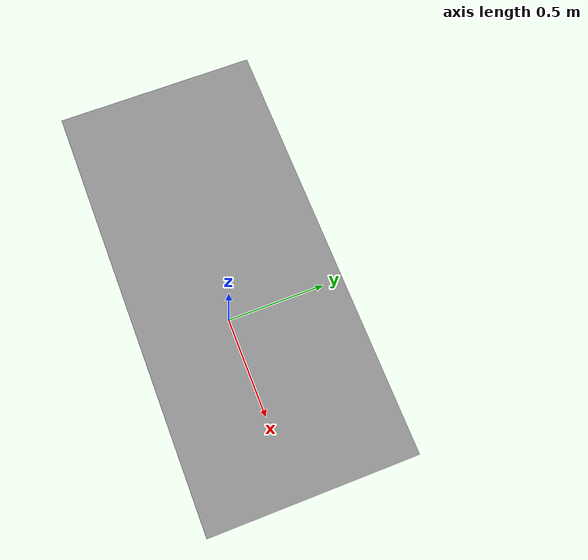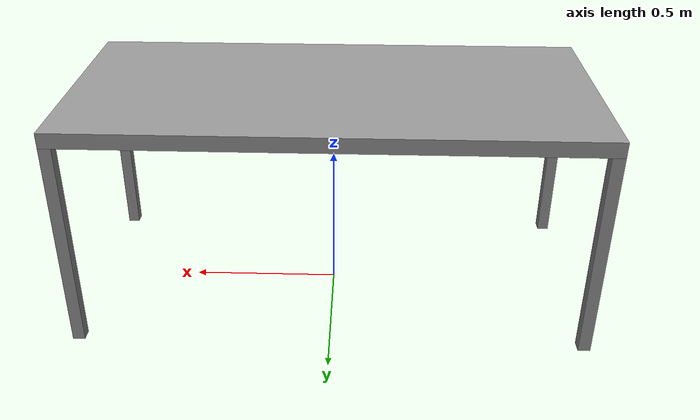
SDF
<?xml version='1.0'?>
<sdf version='1.7'>
  <model name='pic4ser_table'>
    <link name='link_1'>
      <inertial>
        <mass>100</mass>
        <inertia>
          <ixx>5.35417</ixx>
          <ixy>0</ixy>
          <ixz>0</ixz>
          <iyy>24.1042</iyy>
          <iyz>0</iyz>
          <izz>29.4167</izz>
        </inertia>
        <pose>0 0 0 0 -0 0</pose>
      </inertial>
      <pose>0 0 0.725 0 -0 0</pose>
      <gravity>1</gravity>
      <self_collide>0</self_collide>
      <kinematic>0</kinematic>
      <enable_wind>0</enable_wind>
      <visual name='visual'>
        <pose>0 0 0 0 -0 0</pose>
        <geometry>
          <box>
            <size>1.7 0.8 0.05</size>
          </box>
        </geometry>
        <material>
          <lighting>1</lighting>
          <script>
            <uri>file://media/materials/scripts/gazebo.material</uri>
            <name>Gazebo/Grey</name>
          </script>
          <shader type='pixel'>
            <normal_map>__default__</normal_map>
          </shader>
          <ambient>0.65 0.65 0.65 1</ambient>
          <diffuse>0.7 0.7 0.7 1</diffuse>
          <specular>0.01 0.01 0.01 1</specular>
          <emissive>0 0 0 1</emissive>
        </material>
        <transparency>0</transparency>
        <cast_shadows>1</cast_shadows>
      </visual>
      <collision name='collision'>
        <laser_retro>0</laser_retro>
        <max_contacts>10</max_contacts>
        <pose>0 0 0 0 -0 0</pose>
        <geometry>
          <box>
            <size>1.7 0.8 0.05</size>
          </box>
        </geometry>
        <surface>
          <friction>
            <ode>
              <mu>1</mu>
              <mu2>1</mu2>
              <fdir1>0 0 0</fdir1>
              <slip1>0</slip1>
              <slip2>0</slip2>
            </ode>
            <torsional>
              <coefficient>1</coefficient>
              <patch_radius>0</patch_radius>
              <surface_radius>0</surface_radius>
              <use_patch_radius>1</use_patch_radius>
              <ode>
                <slip>0</slip>
              </ode>
            </torsional>
          </friction>
          <bounce>
            <restitution_coefficient>0</restitution_coefficient>
            <threshold>1e+06</threshold>
          </bounce>
          <contact>
            <collide_without_contact>0</collide_without_contact>
            <collide_without_contact_bitmask>1</collide_without_contact_bitmask>
            <collide_bitmask>1</collide_bitmask>
            <ode>
              <soft_cfm>0</soft_cfm>
              <soft_erp>0.2</soft_erp>
              <kp>1e+13</kp>
              <kd>1</kd>
              <max_vel>0.01</max_vel>
              <min_depth>0</min_depth>
            </ode>
            <bullet>
              <split_impulse>1</split_impulse>
              <split_impulse_penetration_threshold>-0.01</split_impulse_penetration_threshold>
              <soft_cfm>0</soft_cfm>
              <soft_erp>0.2</soft_erp>
              <kp>1e+13</kp>
              <kd>1</kd>
            </bullet>
          </contact>
        </surface>
      </collision>
    </link>

    <link name='link_2'>
      <inertial>
        <mass>100</mass>
        <inertia>
          <ixx>0.0541667</ixx>
          <ixy>0</ixy>
          <ixz>0</ixz>
          <iyy>0.0541667</iyy>
          <iyz>0</iyz>
          <izz>0.0266667</izz>
        </inertia>
        <pose>0 0 0 0 -0 0</pose>
      </inertial>
      <pose>0.83 -0.38 0.35 0 -0 0</pose>
      <gravity>1</gravity>
      <self_collide>0</self_collide>
      <kinematic>0</kinematic>
      <enable_wind>0</enable_wind>
      <visual name='visual'>
        <pose>0 0 0 0 -0 0</pose>
        <geometry>
          <box>
            <size>0.04 0.04 0.7</size>
          </box>
        </geometry>
        <material>
          <lighting>1</lighting>
          <script>
            <uri>file://media/materials/scripts/gazebo.material</uri>
            <name>Gazebo/Grey</name>
          </script>
          <shader type='pixel'>
            <normal_map>__default__</normal_map>
          </shader>
          <ambient>0.3 0.3 0.3 1</ambient>
          <diffuse>0.7 0.7 0.7 1</diffuse>
          <specular>0.01 0.01 0.01 1</specular>
          <emissive>0 0 0 1</emissive>
        </material>
        <transparency>0</transparency>
        <cast_shadows>1</cast_shadows>
      </visual>
      <collision name='collision'>
        <laser_retro>0</laser_retro>
        <max_contacts>10</max_contacts>
        <pose>0 0 0 0 -0 0</pose>
        <geometry>
          <box>
            <size>0.04 0.04 0.7</size>
          </box>
        </geometry>
        <surface>
          <friction>
            <ode>
              <mu>1</mu>
              <mu2>1</mu2>
              <fdir1>0 0 0</fdir1>
              <slip1>0</slip1>
              <slip2>0</slip2>
            </ode>
            <torsional>
              <coefficient>1</coefficient>
              <patch_radius>0</patch_radius>
              <surface_radius>0</surface_radius>
              <use_patch_radius>1</use_patch_radius>
              <ode>
                <slip>0</slip>
              </ode>
            </torsional>
          </friction>
          <bounce>
            <restitution_coefficient>0</restitution_coefficient>
            <threshold>1e+06</threshold>
          </bounce>
          <contact>
            <collide_without_contact>0</collide_without_contact>
            <collide_without_contact_bitmask>1</collide_without_contact_bitmask>
            <collide_bitmask>1</collide_bitmask>
            <ode>
              <soft_cfm>0</soft_cfm>
              <soft_erp>0.2</soft_erp>
              <kp>1e+13</kp>
              <kd>1</kd>
              <max_vel>0.01</max_vel>
              <min_depth>0</min_depth>
            </ode>
            <bullet>
              <split_impulse>1</split_impulse>
              <split_impulse_penetration_threshold>-0.01</split_impulse_penetration_threshold>
              <soft_cfm>0</soft_cfm>
              <soft_erp>0.2</soft_erp>
              <kp>1e+13</kp>
              <kd>1</kd>
            </bullet>
          </contact>
        </surface>
      </collision>
    </link>

    <link name='link_2_clone'>
      <inertial>
        <mass>100</mass>
        <inertia>
          <ixx>0.0541667</ixx>
          <ixy>0</ixy>
          <ixz>0</ixz>
          <iyy>0.0541667</iyy>
          <iyz>0</iyz>
          <izz>0.0266667</izz>
        </inertia>
        <pose>0 0 0 0 -0 0</pose>
      </inertial>
      <pose>-0.83 -0.38 0.35 0 -0 0</pose>
      <gravity>1</gravity>
      <self_collide>0</self_collide>
      <kinematic>0</kinematic>
      <enable_wind>0</enable_wind>
      <visual name='visual'>
        <pose>0 0 0 0 -0 0</pose>
        <geometry>
          <box>
            <size>0.04 0.04 0.7</size>
          </box>
        </geometry>
        <material>
          <lighting>1</lighting>
          <script>
            <uri>file://media/materials/scripts/gazebo.material</uri>
            <name>Gazebo/Grey</name>
          </script>
          <shader type='pixel'>
            <normal_map>__default__</normal_map>
          </shader>
          <ambient>0.3 0.3 0.3 1</ambient>
          <diffuse>0.7 0.7 0.7 1</diffuse>
          <specular>0.01 0.01 0.01 1</specular>
          <emissive>0 0 0 1</emissive>
        </material>
        <transparency>0</transparency>
        <cast_shadows>1</cast_shadows>
      </visual>
      <collision name='collision'>
        <laser_retro>0</laser_retro>
        <max_contacts>10</max_contacts>
        <pose>0 0 0 0 -0 0</pose>
        <geometry>
          <box>
            <size>0.04 0.04 0.7</size>
          </box>
        </geometry>
        <surface>
          <friction>
            <ode>
              <mu>1</mu>
              <mu2>1</mu2>
              <fdir1>0 0 0</fdir1>
              <slip1>0</slip1>
              <slip2>0</slip2>
            </ode>
            <torsional>
              <coefficient>1</coefficient>
              <patch_radius>0</patch_radius>
              <surface_radius>0</surface_radius>
              <use_patch_radius>1</use_patch_radius>
              <ode>
                <slip>0</slip>
              </ode>
            </torsional>
          </friction>
          <bounce>
            <restitution_coefficient>0</restitution_coefficient>
            <threshold>1e+06</threshold>
          </bounce>
          <contact>
            <collide_without_contact>0</collide_without_contact>
            <collide_without_contact_bitmask>1</collide_without_contact_bitmask>
            <collide_bitmask>1</collide_bitmask>
            <ode>
              <soft_cfm>0</soft_cfm>
              <soft_erp>0.2</soft_erp>
              <kp>1e+13</kp>
              <kd>1</kd>
              <max_vel>0.01</max_vel>
              <min_depth>0</min_depth>
            </ode>
            <bullet>
              <split_impulse>1</split_impulse>
              <split_impulse_penetration_threshold>-0.01</split_impulse_penetration_threshold>
              <soft_cfm>0</soft_cfm>
              <soft_erp>0.2</soft_erp>
              <kp>1e+13</kp>
              <kd>1</kd>
            </bullet>
          </contact>
        </surface>
      </collision>
    </link>

    <link name='link_2_clone_1'>
      <inertial>
        <mass>100</mass>
        <inertia>
          <ixx>0.0541667</ixx>
          <ixy>0</ixy>
          <ixz>0</ixz>
          <iyy>0.0541667</iyy>
          <iyz>0</iyz>
          <izz>0.0266667</izz>
        </inertia>
        <pose>0 0 0 0 -0 0</pose>
      </inertial>
      <pose>0.83 0.38 0.35 0 -0 0</pose>
      <gravity>1</gravity>
      <self_collide>0</self_collide>
      <kinematic>0</kinematic>
      <enable_wind>0</enable_wind>
      <visual name='visual'>
        <pose>0 0 0 0 -0 0</pose>
        <geometry>
          <box>
            <size>0.04 0.04 0.7</size>
          </box>
        </geometry>
        <material>
          <lighting>1</lighting>
          <script>
            <uri>file://media/materials/scripts/gazebo.material</uri>
            <name>Gazebo/Grey</name>
          </script>
          <shader type='pixel'>
            <normal_map>__default__</normal_map>
          </shader>
          <ambient>0.3 0.3 0.3 1</ambient>
          <diffuse>0.7 0.7 0.7 1</diffuse>
          <specular>0.01 0.01 0.01 1</specular>
          <emissive>0 0 0 1</emissive>
        </material>
        <transparency>0</transparency>
        <cast_shadows>1</cast_shadows>
      </visual>
      <collision name='collision'>
        <laser_retro>0</laser_retro>
        <max_contacts>10</max_contacts>
        <pose>0 0 0 0 -0 0</pose>
        <geometry>
          <box>
            <size>0.04 0.04 0.7</size>
          </box>
        </geometry>
        <surface>
          <friction>
            <ode>
              <mu>1</mu>
              <mu2>1</mu2>
              <fdir1>0 0 0</fdir1>
              <slip1>0</slip1>
              <slip2>0</slip2>
            </ode>
            <torsional>
              <coefficient>1</coefficient>
              <patch_radius>0</patch_radius>
              <surface_radius>0</surface_radius>
              <use_patch_radius>1</use_patch_radius>
              <ode>
                <slip>0</slip>
              </ode>
            </torsional>
          </friction>
          <bounce>
            <restitution_coefficient>0</restitution_coefficient>
            <threshold>1e+06</threshold>
          </bounce>
          <contact>
            <collide_without_contact>0</collide_without_contact>
            <collide_without_contact_bitmask>1</collide_without_contact_bitmask>
            <collide_bitmask>1</collide_bitmask>
            <ode>
              <soft_cfm>0</soft_cfm>
              <soft_erp>0.2</soft_erp>
              <kp>1e+13</kp>
              <kd>1</kd>
              <max_vel>0.01</max_vel>
              <min_depth>0</min_depth>
            </ode>
            <bullet>
              <split_impulse>1</split_impulse>
              <split_impulse_penetration_threshold>-0.01</split_impulse_penetration_threshold>
              <soft_cfm>0</soft_cfm>
              <soft_erp>0.2</soft_erp>
              <kp>1e+13</kp>
              <kd>1</kd>
            </bullet>
          </contact>
        </surface>
      </collision>
    </link>

    <link name='link_2_clone_1_clone'>
      <inertial>
        <mass>100</mass>
        <inertia>
          <ixx>0.0541667</ixx>
          <ixy>0</ixy>
          <ixz>0</ixz>
          <iyy>0.0541667</iyy>
          <iyz>0</iyz>
          <izz>0.0266667</izz>
        </inertia>
        <pose>0 0 0 0 -0 0</pose>
      </inertial>
      <pose>-0.83 0.38 0.35 0 -0 0</pose>
      <gravity>1</gravity>
      <self_collide>0</self_collide>
      <kinematic>0</kinematic>
      <enable_wind>0</enable_wind>
      <visual name='visual'>
        <pose>0 0 0 0 -0 0</pose>
        <geometry>
          <box>
            <size>0.04 0.04 0.7</size>
          </box>
        </geometry>
        <material>
          <lighting>1</lighting>
          <script>
            <uri>file://media/materials/scripts/gazebo.material</uri>
            <name>Gazebo/Grey</name>
          </script>
          <shader type='pixel'>
            <normal_map>__default__</normal_map>
          </shader>
          <ambient>0.3 0.3 0.3 1</ambient>
          <diffuse>0.7 0.7 0.7 1</diffuse>
          <specular>0.01 0.01 0.01 1</specular>
          <emissive>0 0 0 1</emissive>
        </material>
        <transparency>0</transparency>
        <cast_shadows>1</cast_shadows>
      </visual>
      <collision name='collision'>
        <laser_retro>0</laser_retro>
        <max_contacts>10</max_contacts>
        <pose>0 0 0 0 -0 0</pose>
        <geometry>
          <box>
            <size>0.04 0.04 0.7</size>
          </box>
        </geometry>
        <surface>
          <friction>
            <ode>
              <mu>1</mu>
              <mu2>1</mu2>
              <fdir1>0 0 0</fdir1>
              <slip1>0</slip1>
              <slip2>0</slip2>
            </ode>
            <torsional>
              <coefficient>1</coefficient>
              <patch_radius>0</patch_radius>
              <surface_radius>0</surface_radius>
              <use_patch_radius>1</use_patch_radius>
              <ode>
                <slip>0</slip>
              </ode>
            </torsional>
          </friction>
          <bounce>
            <restitution_coefficient>0</restitution_coefficient>
            <threshold>1e+06</threshold>
          </bounce>
          <contact>
            <collide_without_contact>0</collide_without_contact>
            <collide_without_contact_bitmask>1</collide_without_contact_bitmask>
            <collide_bitmask>1</collide_bitmask>
            <ode>
              <soft_cfm>0</soft_cfm>
              <soft_erp>0.2</soft_erp>
              <kp>1e+13</kp>
              <kd>1</kd>
              <max_vel>0.01</max_vel>
              <min_depth>0</min_depth>
            </ode>
            <bullet>
              <split_impulse>1</split_impulse>
              <split_impulse_penetration_threshold>-0.01</split_impulse_penetration_threshold>
              <soft_cfm>0</soft_cfm>
              <soft_erp>0.2</soft_erp>
              <kp>1e+13</kp>
              <kd>1</kd>
            </bullet>
          </contact>
        </surface>
      </collision>
    </link>

    <joint name='link_1_JOINT_0' type='fixed'>
      <parent>link_1</parent>
      <child>link_2</child>
      <pose>0 0 0 0 -0 0</pose>
      <physics>
        <ode>
          <limit>
            <cfm>0</cfm>
            <erp>0.2</erp>
          </limit>
          <suspension>
            <cfm>0</cfm>
            <erp>0.2</erp>
          </suspension>
        </ode>
      </physics>
    </joint>
    <joint name='link_1_JOINT_1' type='fixed'>
      <parent>link_1</parent>
      <child>link_2_clone</child>
      <pose>0 0 0 0 -0 0</pose>
      <physics>
        <ode>
          <limit>
            <cfm>0</cfm>
            <erp>0.2</erp>
          </limit>
          <suspension>
            <cfm>0</cfm>
            <erp>0.2</erp>
          </suspension>
        </ode>
      </physics>
    </joint>
    <joint name='link_1_JOINT_2' type='fixed'>
      <parent>link_1</parent>
      <child>link_2_clone_1</child>
      <pose>0 0 0 0 -0 0</pose>
      <physics>
        <ode>
          <limit>
            <cfm>0</cfm>
            <erp>0.2</erp>
          </limit>
          <suspension>
            <cfm>0</cfm>
            <erp>0.2</erp>
          </suspension>
        </ode>
      </physics>
    </joint>
    <joint name='link_1_JOINT_3' type='fixed'>
      <parent>link_1</parent>
      <child>link_2_clone_1_clone</child>
      <pose>0 0 0 0 -0 0</pose>
      <physics>
        <ode>
          <limit>
            <cfm>0</cfm>
            <erp>0.2</erp>
          </limit>
          <suspension>
            <cfm>0</cfm>
            <erp>0.2</erp>
          </suspension>
        </ode>
      </physics>
    </joint>
    <static>1</static>
    <allow_auto_disable>1</allow_auto_disable>
  </model>
</sdf>
